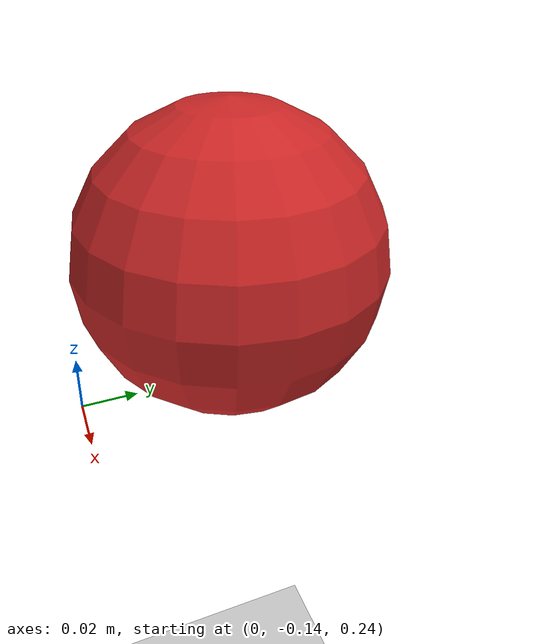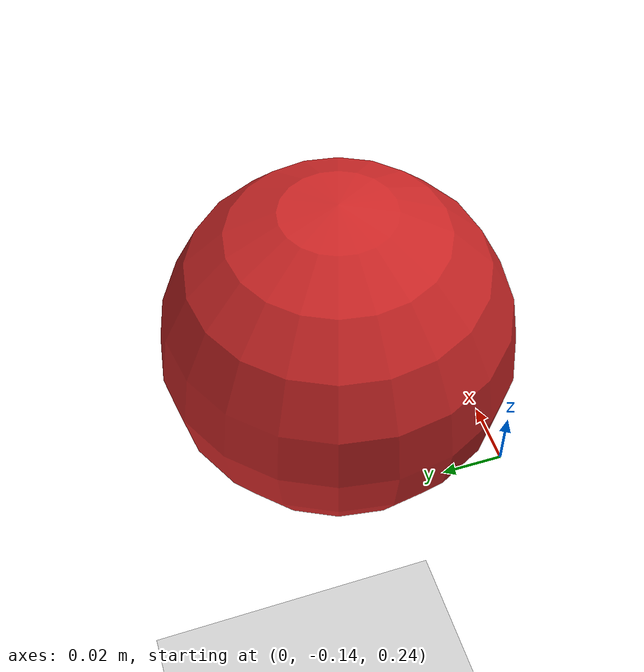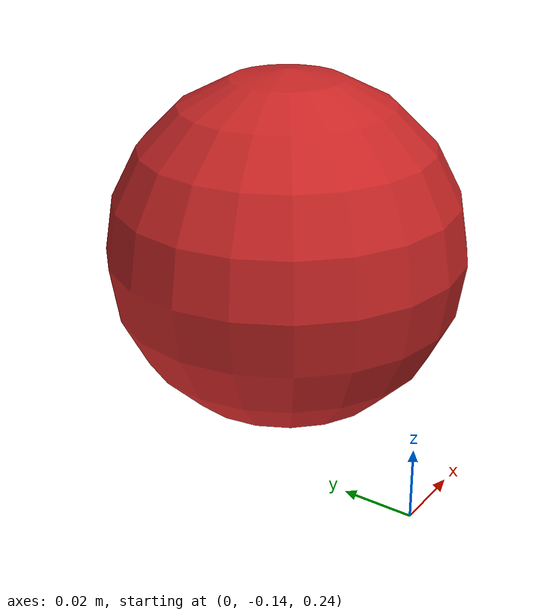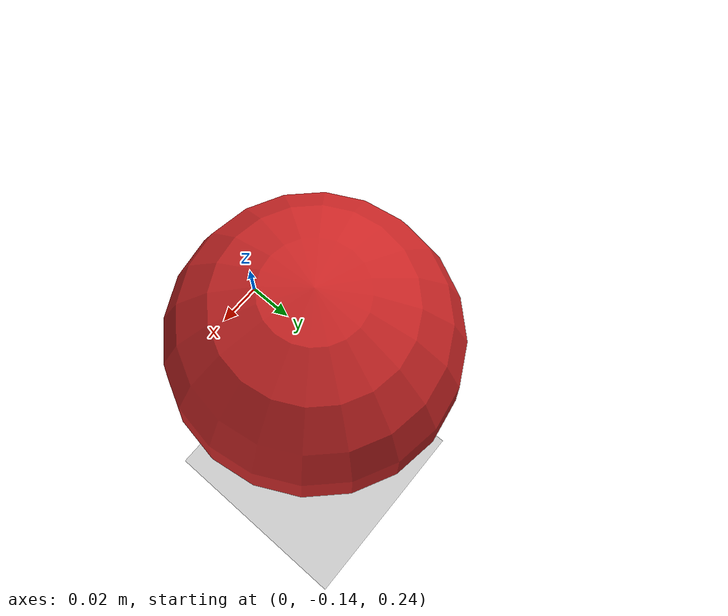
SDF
<?xml version="1.0" ?>
<sdf version="1.7">
  <world name="default">
    <include>
      <uri>model://ground_plane</uri>
    </include>
    <include>
      <uri>model://soft_ball</uri>
      <pose>0.016 -0.09 0.30 0 0 0</pose>
    </include>
    <light type="directional" name="light">
      <pose frame=''>0 -4 2.5 1.0 0 0</pose>
      <diffuse>1.0 1.0 1.0 1</diffuse>
      <specular>0.2 0.2 0.2 1</specular>
      <attenuation>
        <range>20</range>
        <constant>0.9</constant>
        <linear>0.01</linear>
        <quadratic>0.001</quadratic>
      </attenuation>
      <direction>0 0 -1</direction>
      <cast_shadows>1</cast_shadows>
    </light>
    <physics type="ode">
      <gravity>0.000000 0.000000 -9.810000</gravity>
      <ode>
        <solver>
          <type>quick</type>
          <iters>100</iters>
          <precon_iters>0</precon_iters>
          <sor>1.000000</sor>
        </solver>
        <constraints>
          <cfm>0.000000</cfm>
          <erp>0.200000</erp>
          <contact_max_correcting_vel>0.000000</contact_max_correcting_vel>
          <contact_surface_layer>0.00000</contact_surface_layer>
        </constraints>
      </ode>
      <real_time_factor>1.0</real_time_factor>
      <max_step_size>0.001000</max_step_size>
    </physics>
    <gui fullscreen='0'>
      <camera name='user_camera'>
        <pose frame=''>0.076734 -1.02633 0.391602 -0 0.219642 1.62419</pose>
        <view_controller>orbit</view_controller>
        <projection_type>perspective</projection_type>
      </camera>
    </gui>
  </world>
</sdf>

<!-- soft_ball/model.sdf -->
<sdf version='1.7'>
  <model name='soft_ball'>
    <link name='link'>
      <inertial>
        <mass>1</mass>
        <inertia>
          <ixx>0.1</ixx>
          <ixy>0</ixy>
          <ixz>0</ixz>
          <iyy>0.1</iyy>
          <iyz>0</iyz>
          <izz>0.1</izz>
        </inertia>
        <pose>0 0 0 0 0 0</pose>
      </inertial>
      <self_collide>0</self_collide>
      <enable_wind>0</enable_wind>
      <kinematic>0</kinematic>
      <pose>0 0 0 0 0 0</pose>
      <visual name='visual'>
        <geometry>
          <sphere>
            <radius>0.05</radius>
          </sphere>
        </geometry>
        <material>
          <script>
            <name>Gazebo/Red</name>
            <uri>file://media/materials/scripts/gazebo.material</uri>
          </script>
          <shader type='pixel'/>
        </material>
        <pose>0 0 0 0 0 0</pose>
        <transparency>0</transparency>
        <cast_shadows>1</cast_shadows>
      </visual>
      <collision name='collision'>
        <laser_retro>0</laser_retro>
        <max_contacts>20</max_contacts>
        <pose>0 0 0 0 0 0</pose>
        <geometry>
          <sphere>
            <radius>0.05</radius>
          </sphere>
        </geometry>
        <surface>
          <friction>
            <ode>
              <mu>1</mu>
              <mu2>1</mu2>
              <fdir1>0 0 0</fdir1>
              <slip1>0</slip1>
              <slip2>0</slip2>
            </ode>
            <torsional>
              <coefficient>1</coefficient>
              <patch_radius>0</patch_radius>
              <surface_radius>0</surface_radius>
              <use_patch_radius>1</use_patch_radius>
              <ode>
                <slip>0</slip>
              </ode>
            </torsional>
          </friction>
          <bounce>
            <restitution_coefficient>0</restitution_coefficient>
            <threshold>1e+06</threshold>
          </bounce>
          <contact>
            <collide_without_contact>0</collide_without_contact>
            <collide_without_contact_bitmask>1</collide_without_contact_bitmask>
            <collide_bitmask>1</collide_bitmask>
            <ode>
              <soft_cfm>0</soft_cfm>
              <soft_erp>0.2</soft_erp>
              <kp>1e+13</kp>
              <kd>1</kd>
              <max_vel>0.01</max_vel>
              <min_depth>0</min_depth>
            </ode>
            <bullet>
              <split_impulse>1</split_impulse>
              <split_impulse_penetration_threshold>-0.01</split_impulse_penetration_threshold>
              <soft_cfm>0</soft_cfm>
              <soft_erp>0.2</soft_erp>
              <kp>1e+13</kp>
              <kd>1</kd>
            </bullet>
          </contact>
          <soft_contact>
            <dart>
              <bone_attachment>10</bone_attachment>
              <stffness>1</stffness>
              <damping>10</damping>
              <flesh_mass_fraction>0.05</flesh_mass_fraction>
            </dart>
          </soft_contact>
        </surface>
      </collision>
    </link>
    <static>1</static>
    <allow_auto_disable>1</allow_auto_disable>
  </model>
</sdf>
